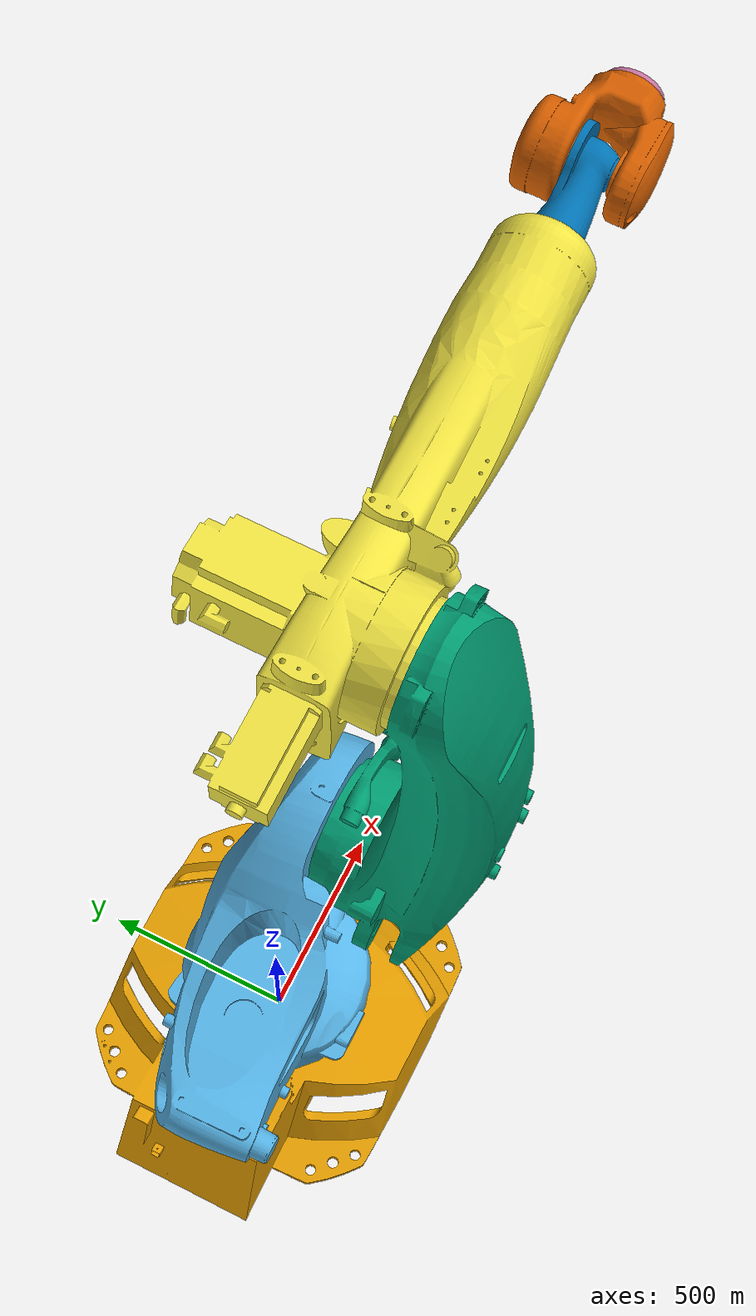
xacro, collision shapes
<?xml version="1.0"?>
<!--Generates a urdf from the macro in kr90r2900_extraha_macro.xacro -->
<robot name="kuka_kr90r2900_extraha_tool" xmlns:xacro="http://wiki.ros.org/xacro">
    <xacro:include filename="$(find kuka_kr90_support)/urdf/kr90r2900_extraha_macro_tool.xacro" />
    <xacro:kuka_kr90r2900_extraha prefix=""/>
</robot>

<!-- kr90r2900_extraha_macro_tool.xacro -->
<robot xmlns:xacro="http://wiki.ros.org/xacro">

  <xacro:property name="DEG2RAD" value="0.017453292519943295"/>

  <xacro:macro name="kuka_kr90r2900_extraha" params="prefix">
    <!-- LINKS -->
    <!-- base link -->
    <link name="${prefix}base_link">
      <visual>
        <origin xyz="0 0 0" rpy="0 0 0"/>
        <geometry>
          <mesh filename="package://kuka_kr90_support/meshes/kr90r2900extraHA/visual/base_link.dae" />
        </geometry>
      </visual>
      <collision>
        <origin xyz="0 0 0" rpy="0 0 0"/>
        <geometry>
          <mesh filename="package://kuka_kr90_support/meshes/kr90r2900extraHA/collision/base_link.stl" />
        </geometry>
      </collision>
    </link>
    <!-- link 1 (A1) -->
    <link name="${prefix}link_1">
      <inertial>
        <origin xyz="0 0 -0.675" rpy="0 0 0"/>
        <mass value="2"/>
        <inertia ixx="0.01" ixy="0" ixz="0" iyy="0.01" iyz="0" izz="0.01" />
      </inertial>
      <visual>
        <origin xyz="0 0 -0.675" rpy="0 0 0"/>
        <geometry>
          <mesh filename="package://kuka_kr90_support/meshes/kr90r2900extraHA/visual/link_1.dae" />
        </geometry>
      </visual>
      <collision>
        <origin xyz="0 0 -0.675" rpy="0 0 0"/>
        <geometry>
          <mesh filename="package://kuka_kr90_support/meshes/kr90r2900extraHA/collision/link_1.stl" />
        </geometry>
      </collision>
    </link>
    <!-- link 2 -->
    <link name="${prefix}link_2">
      <inertial>
        <origin xyz="-0.35 0 -0.675" rpy="0 0 0"/>
        <mass value="2"/>
        <inertia ixx="0.01" ixy="0" ixz="0" iyy="0.01" iyz="0" izz="0.01" />
      </inertial>
      <visual>
        <origin xyz="-0.35 0 -0.675" rpy="0 0 0"/>
        <geometry>
          <mesh filename="package://kuka_kr90_support/meshes/kr90r2900extraHA/visual/link_2.dae"/>
        </geometry>
      </visual>
      <collision>
        <origin xyz="-0.35 0 -0.675" rpy="0 0 0"/>
        <geometry>
          <mesh filename="package://kuka_kr90_support/meshes/kr90r2900extraHA/collision/link_2.stl" />
        </geometry>
      </collision>
    </link>
    <!-- link 3 -->
    <link name="${prefix}link_3">
      <inertial>
        <origin xyz="-0.35 0 -2.025" rpy="0 0 0"/>
        <mass value="2"/>
        <inertia ixx="0.01" ixy="0" ixz="0" iyy="0.01" iyz="0" izz="0.01" />
      </inertial>
      <visual>
        <origin xyz="-0.35 0 -2.025" rpy="0 0 0"/>
        <geometry>
          <mesh filename="package://kuka_kr90_support/meshes/kr90r2900extraHA/visual/link_3.dae" />
        </geometry>
      </visual>
      <collision>
        <origin xyz="-0.35 0 -2.025" rpy="0 0 0"/>
        <geometry>
          <mesh filename="package://kuka_kr90_support/meshes/kr90r2900extraHA/collision/link_3.stl" />
        </geometry>
      </collision>
    </link>
    <!-- link 4 -->
    <link name="${prefix}link_4">
      <inertial>
        <origin xyz="-0.35 0 -1.984" rpy="0 0 0"/>
        <mass value="2"/>
        <inertia ixx="0.01" ixy="0" ixz="0" iyy="0.01" iyz="0" izz="0.01" />
      </inertial>
      <visual>
        <origin xyz="-0.35 0 -1.984" rpy="0 0 0"/>
        <geometry>
          <mesh filename="package://kuka_kr90_support/meshes/kr90r2900extraHA/visual/link_4.dae" />
        </geometry>
      </visual>
      <collision>
        <origin xyz="-0.35 0 -1.984" rpy="0 0 0"/>
        <geometry>
          <mesh filename="package://kuka_kr90_support/meshes/kr90r2900extraHA/collision/link_4.stl" />
        </geometry>
      </collision>
    </link>
    <!-- link 5 -->
    <link name="${prefix}link_5">
      <inertial>
        <origin xyz="-1.55 0 -1.984" rpy="0 0 0"/>
        <mass value="2"/>
        <inertia ixx="0.01" ixy="0" ixz="0" iyy="0.01" iyz="0" izz="0.01" />
      </inertial>
      <visual>
        <origin xyz="-1.55 0 -1.984" rpy="0 0 0"/>
        <geometry>
          <mesh filename="package://kuka_kr90_support/meshes/kr90r2900extraHA/visual/link_5.dae" />
        </geometry>
      </visual>
      <collision>
        <origin xyz="-1.55 0 -1.984" rpy="0 0 0"/>
        <geometry>
          <mesh filename="package://kuka_kr90_support/meshes/kr90r2900extraHA/collision/link_5.stl" />
        </geometry>
      </collision>
    </link>
    <!-- link 6 -->
    <link name="${prefix}link_6">
      <inertial>
        <origin xyz="-1.55 0 -1.984" rpy="0 0 0"/>
        <mass value="2"/>
        <inertia ixx="0.01" ixy="0" ixz="0" iyy="0.01" iyz="0" izz="0.01" />
      </inertial>
      <visual>
        <origin xyz="-1.55 0 -1.984" rpy="0 0 0"/>
        <geometry>
          <mesh filename="package://kuka_kr90_support/meshes/kr90r2900extraHA/visual/link_6.dae" />
        </geometry>
      </visual>
      <collision>
        <origin xyz="-1.55 0 -1.984" rpy="0 0 0"/>
        <geometry>
          <mesh filename="package://kuka_kr90_support/meshes/kr90r2900extraHA/collision/link_6.stl" />
        </geometry>
      </collision>
    </link>
    <!-- tool 0 -->
    <!-- This frame corresponds to the $FLANGE coordinate system in KUKA KRC controllers. -->
    <link name="${prefix}tocha">
      <visual>
        <origin xyz="0.5342 2.886 -0.2" rpy="${DEG2RAD * 180} 0 0"/>
        <geometry>
          <mesh filename="package://kuka_kr90_support/meshes/kr90r2900extraHA/visual/tocha_cmt.dae" />
        </geometry>
      </visual>
    </link>
    <!-- END LINKS -->

    <!-- JOINTS -->
    <!-- joint 1 (A1) -->
    <joint name="${prefix}joint_a1" type="revolute">
      <origin xyz="0 0 0.675" rpy="0 0 0"/>
      <parent link="${prefix}base_link"/>
      <child link="${prefix}link_1"/>
      <axis xyz="0 0 -1"/>
      <limit effort="0" lower="${-DEG2RAD * 185}" upper="${DEG2RAD * 185}" velocity="${DEG2RAD * 156}"/>
    </joint>
    <!-- joint 2 (A2) -->
    <joint name="${prefix}joint_a2" type="revolute">
      <origin xyz="0.35 0 0" rpy="0 0 0"/>
      <parent link="${prefix}link_1"/>
      <child link="${prefix}link_2"/>
      <axis xyz="0 1 0"/>
      <limit effort="0" lower="${-DEG2RAD * 155}" upper="${DEG2RAD * 35}" velocity="${DEG2RAD * 156}"/>
    </joint>
    <!-- joint 3 (A3) -->
    <joint name="${prefix}joint_a3" type="revolute">
      <origin xyz="0 0 1.35" rpy="0 0 0"/>
      <parent link="${prefix}link_2"/>
      <child link="${prefix}link_3"/>
      <axis xyz="0 1 0"/>
      <limit effort="0" lower="${-DEG2RAD * 130}" upper="${DEG2RAD * 154}" velocity="${DEG2RAD * 156}"/>
    </joint>
    <!-- joint 4 (A4) -->
    <joint name="${prefix}joint_a4" type="revolute">
      <origin xyz="0 0 -0.041" rpy="0 0 0"/>
      <parent link="${prefix}link_3"/>
      <child link="${prefix}link_4"/>
      <axis xyz="-1 0 0"/>
      <limit effort="0" lower="${-DEG2RAD * 350}" upper="${DEG2RAD * 350}" velocity="${DEG2RAD * 330}"/>
    </joint>
    <!-- joint 5 (A5) -->
    <joint name="${prefix}joint_a5" type="revolute">
      <origin xyz="1.2 0 0" rpy="0 0 0"/>
      <parent link="${prefix}link_4"/>
      <child link="${prefix}link_5"/>
      <axis xyz="0 1 0"/>
      <limit effort="0" lower="${-DEG2RAD * 130}" upper="${DEG2RAD * 130}" velocity="${DEG2RAD * 330}"/>
    </joint>
    <!-- joint 6 (A6) -->
    <joint name="${prefix}joint_a6" type="revolute">
      <origin xyz="0 0 0" rpy="0 0 0"/>
      <parent link="${prefix}link_5"/>
      <child link="${prefix}link_6"/>
      <axis xyz="-1 0 0"/>
      <limit effort="0" lower="${-DEG2RAD * 350}" upper="${DEG2RAD * 350}" velocity="${DEG2RAD * 615}"/>
    </joint>
    <!-- tool frame - fixed frame -->
    <joint name="${prefix}joint_a6-tocha" type="fixed">
      <parent link="${prefix}link_6"/>
      <child link="${prefix}tocha"/>
      <origin xyz="0.215 0 0" rpy="0 ${DEG2RAD * 90} 0"/>
    </joint>
    <!-- END JOINTS -->

    <!-- ROS base_link to KUKA $ROBROOT coordinate system transform -->
    <link name="${prefix}base" />
    <joint name="${prefix}base_link-base" type="fixed">
      <origin xyz="0 0 0" rpy="0 0 0"/>
      <parent link="${prefix}base_link"/>
      <child link="${prefix}base"/>
    </joint>

  </xacro:macro>
</robot>
